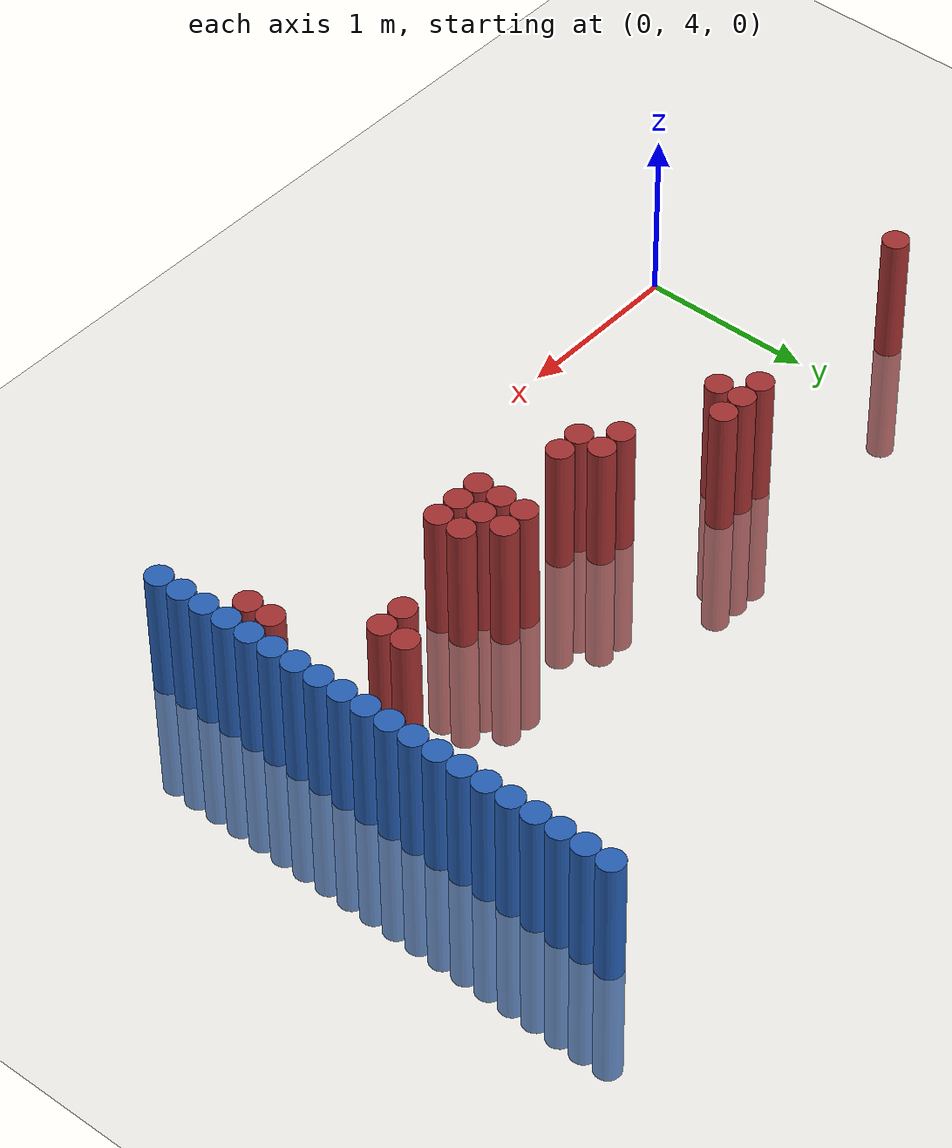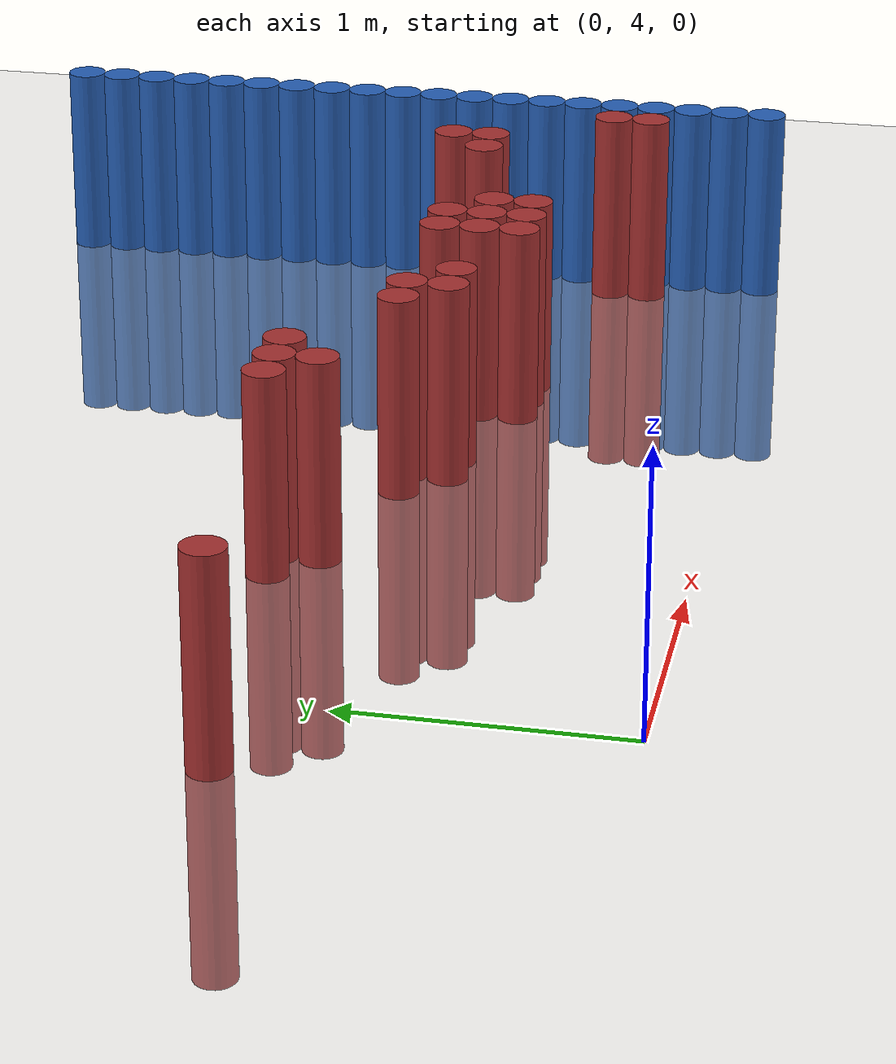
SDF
<sdf version="1.6">
 <world name="default">
  <model name="ground_plane">
   <static>1</static>
   <link name="link">
    <collision name="collision">
     <geometry><plane><normal>0 0 1</normal><size>100 100</size></plane></geometry>
     <surface><friction><ode><mu>100</mu><mu2>50</mu2></ode></friction></surface>
    </collision>
    <visual name="visual">
     <cast_shadows>0</cast_shadows>
     <geometry><plane><normal>0 0 1</normal><size>100 100</size></plane></geometry>
     <material>
      <script><uri>file://media/materials/scripts/gazebo.material</uri><name>Gazebo/Grey</name></script>
     </material>
    </visual>
   </link>
  </model>
  <model name="unit_cylinder_168">
   <static>1</static>
   <pose>3.925000 4.075000 0.000000 0.000000 0.000000 0.000000</pose>
   <link name="link">
    <inertial>
     <mass>1</mass>
     <inertia><ixx>0.145833</ixx><ixy>0</ixy><ixz>0</ixz><iyy>0.145833</iyy><iyz>0</iyz><izz>0.125</izz></inertia>
    </inertial>
    <collision name="collision">
     <geometry><cylinder><radius>0.075000</radius><length>1.5</length></cylinder></geometry>
    </collision>
    <visual name="visual">
     <geometry><cylinder><radius>0.075000</radius><length>1.5</length></cylinder></geometry>
     <material>
      <ambient>0.152000 0.379000 0.720000 1</ambient>
      <diffuse>0.152000 0.379000 0.720000 1</diffuse>
     </material>
     <material>
      <script><name>Gazebo/Grey</name><uri>file://media/materials/scripts/gazebo.material</uri></script>
     </material>
    </visual>
   </link>
  </model>
  <model name="unit_cylinder_170">
   <static>1</static>
   <pose>3.925000 4.225000 0.000000 0.000000 0.000000 0.000000</pose>
   <link name="link">
    <inertial>
     <mass>1</mass>
     <inertia><ixx>0.145833</ixx><ixy>0</ixy><ixz>0</ixz><iyy>0.145833</iyy><iyz>0</iyz><izz>0.125</izz></inertia>
    </inertial>
    <collision name="collision">
     <geometry><cylinder><radius>0.075000</radius><length>1.5</length></cylinder></geometry>
    </collision>
    <visual name="visual">
     <geometry><cylinder><radius>0.075000</radius><length>1.5</length></cylinder></geometry>
     <material>
      <ambient>0.152000 0.379000 0.720000 1</ambient>
      <diffuse>0.152000 0.379000 0.720000 1</diffuse>
     </material>
     <material>
      <script><name>Gazebo/Grey</name><uri>file://media/materials/scripts/gazebo.material</uri></script>
     </material>
    </visual>
   </link>
  </model>
  <model name="unit_cylinder_172">
   <static>1</static>
   <pose>3.925000 4.375000 0.000000 0.000000 0.000000 0.000000</pose>
   <link name="link">
    <inertial>
     <mass>1</mass>
     <inertia><ixx>0.145833</ixx><ixy>0</ixy><ixz>0</ixz><iyy>0.145833</iyy><iyz>0</iyz><izz>0.125</izz></inertia>
    </inertial>
    <collision name="collision">
     <geometry><cylinder><radius>0.075000</radius><length>1.5</length></cylinder></geometry>
    </collision>
    <visual name="visual">
     <geometry><cylinder><radius>0.075000</radius><length>1.5</length></cylinder></geometry>
     <material>
      <ambient>0.152000 0.379000 0.720000 1</ambient>
      <diffuse>0.152000 0.379000 0.720000 1</diffuse>
     </material>
     <material>
      <script><name>Gazebo/Grey</name><uri>file://media/materials/scripts/gazebo.material</uri></script>
     </material>
    </visual>
   </link>
  </model>
  <model name="unit_cylinder_174">
   <static>1</static>
   <pose>3.925000 4.525000 0.000000 0.000000 0.000000 0.000000</pose>
   <link name="link">
    <inertial>
     <mass>1</mass>
     <inertia><ixx>0.145833</ixx><ixy>0</ixy><ixz>0</ixz><iyy>0.145833</iyy><iyz>0</iyz><izz>0.125</izz></inertia>
    </inertial>
    <collision name="collision">
     <geometry><cylinder><radius>0.075000</radius><length>1.5</length></cylinder></geometry>
    </collision>
    <visual name="visual">
     <geometry><cylinder><radius>0.075000</radius><length>1.5</length></cylinder></geometry>
     <material>
      <ambient>0.152000 0.379000 0.720000 1</ambient>
      <diffuse>0.152000 0.379000 0.720000 1</diffuse>
     </material>
     <material>
      <script><name>Gazebo/Grey</name><uri>file://media/materials/scripts/gazebo.material</uri></script>
     </material>
    </visual>
   </link>
  </model>
  <model name="unit_cylinder_176">
   <static>1</static>
   <pose>3.925000 4.675000 0.000000 0.000000 0.000000 0.000000</pose>
   <link name="link">
    <inertial>
     <mass>1</mass>
     <inertia><ixx>0.145833</ixx><ixy>0</ixy><ixz>0</ixz><iyy>0.145833</iyy><iyz>0</iyz><izz>0.125</izz></inertia>
    </inertial>
    <collision name="collision">
     <geometry><cylinder><radius>0.075000</radius><length>1.5</length></cylinder></geometry>
    </collision>
    <visual name="visual">
     <geometry><cylinder><radius>0.075000</radius><length>1.5</length></cylinder></geometry>
     <material>
      <ambient>0.152000 0.379000 0.720000 1</ambient>
      <diffuse>0.152000 0.379000 0.720000 1</diffuse>
     </material>
     <material>
      <script><name>Gazebo/Grey</name><uri>file://media/materials/scripts/gazebo.material</uri></script>
     </material>
    </visual>
   </link>
  </model>
  <model name="unit_cylinder_178">
   <static>1</static>
   <pose>3.925000 4.825000 0.000000 0.000000 0.000000 0.000000</pose>
   <link name="link">
    <inertial>
     <mass>1</mass>
     <inertia><ixx>0.145833</ixx><ixy>0</ixy><ixz>0</ixz><iyy>0.145833</iyy><iyz>0</iyz><izz>0.125</izz></inertia>
    </inertial>
    <collision name="collision">
     <geometry><cylinder><radius>0.075000</radius><length>1.5</length></cylinder></geometry>
    </collision>
    <visual name="visual">
     <geometry><cylinder><radius>0.075000</radius><length>1.5</length></cylinder></geometry>
     <material>
      <ambient>0.152000 0.379000 0.720000 1</ambient>
      <diffuse>0.152000 0.379000 0.720000 1</diffuse>
     </material>
     <material>
      <script><name>Gazebo/Grey</name><uri>file://media/materials/scripts/gazebo.material</uri></script>
     </material>
    </visual>
   </link>
  </model>
  <model name="unit_cylinder_180">
   <static>1</static>
   <pose>3.925000 4.975000 0.000000 0.000000 0.000000 0.000000</pose>
   <link name="link">
    <inertial>
     <mass>1</mass>
     <inertia><ixx>0.145833</ixx><ixy>0</ixy><ixz>0</ixz><iyy>0.145833</iyy><iyz>0</iyz><izz>0.125</izz></inertia>
    </inertial>
    <collision name="collision">
     <geometry><cylinder><radius>0.075000</radius><length>1.5</length></cylinder></geometry>
    </collision>
    <visual name="visual">
     <geometry><cylinder><radius>0.075000</radius><length>1.5</length></cylinder></geometry>
     <material>
      <ambient>0.152000 0.379000 0.720000 1</ambient>
      <diffuse>0.152000 0.379000 0.720000 1</diffuse>
     </material>
     <material>
      <script><name>Gazebo/Grey</name><uri>file://media/materials/scripts/gazebo.material</uri></script>
     </material>
    </visual>
   </link>
  </model>
  <model name="unit_cylinder_182">
   <static>1</static>
   <pose>3.925000 5.125000 0.000000 0.000000 0.000000 0.000000</pose>
   <link name="link">
    <inertial>
     <mass>1</mass>
     <inertia><ixx>0.145833</ixx><ixy>0</ixy><ixz>0</ixz><iyy>0.145833</iyy><iyz>0</iyz><izz>0.125</izz></inertia>
    </inertial>
    <collision name="collision">
     <geometry><cylinder><radius>0.075000</radius><length>1.5</length></cylinder></geometry>
    </collision>
    <visual name="visual">
     <geometry><cylinder><radius>0.075000</radius><length>1.5</length></cylinder></geometry>
     <material>
      <ambient>0.152000 0.379000 0.720000 1</ambient>
      <diffuse>0.152000 0.379000 0.720000 1</diffuse>
     </material>
     <material>
      <script><name>Gazebo/Grey</name><uri>file://media/materials/scripts/gazebo.material</uri></script>
     </material>
    </visual>
   </link>
  </model>
  <model name="unit_cylinder_184">
   <static>1</static>
   <pose>3.925000 5.275000 0.000000 0.000000 0.000000 0.000000</pose>
   <link name="link">
    <inertial>
     <mass>1</mass>
     <inertia><ixx>0.145833</ixx><ixy>0</ixy><ixz>0</ixz><iyy>0.145833</iyy><iyz>0</iyz><izz>0.125</izz></inertia>
    </inertial>
    <collision name="collision">
     <geometry><cylinder><radius>0.075000</radius><length>1.5</length></cylinder></geometry>
    </collision>
    <visual name="visual">
     <geometry><cylinder><radius>0.075000</radius><length>1.5</length></cylinder></geometry>
     <material>
      <ambient>0.152000 0.379000 0.720000 1</ambient>
      <diffuse>0.152000 0.379000 0.720000 1</diffuse>
     </material>
     <material>
      <script><name>Gazebo/Grey</name><uri>file://media/materials/scripts/gazebo.material</uri></script>
     </material>
    </visual>
   </link>
  </model>
  <model name="unit_cylinder_186">
   <static>1</static>
   <pose>3.925000 5.425000 0.000000 0.000000 0.000000 0.000000</pose>
   <link name="link">
    <inertial>
     <mass>1</mass>
     <inertia><ixx>0.145833</ixx><ixy>0</ixy><ixz>0</ixz><iyy>0.145833</iyy><iyz>0</iyz><izz>0.125</izz></inertia>
    </inertial>
    <collision name="collision">
     <geometry><cylinder><radius>0.075000</radius><length>1.5</length></cylinder></geometry>
    </collision>
    <visual name="visual">
     <geometry><cylinder><radius>0.075000</radius><length>1.5</length></cylinder></geometry>
     <material>
      <ambient>0.152000 0.379000 0.720000 1</ambient>
      <diffuse>0.152000 0.379000 0.720000 1</diffuse>
     </material>
     <material>
      <script><name>Gazebo/Grey</name><uri>file://media/materials/scripts/gazebo.material</uri></script>
     </material>
    </visual>
   </link>
  </model>
  <model name="unit_cylinder_188">
   <static>1</static>
   <pose>3.925000 5.575000 0.000000 0.000000 0.000000 0.000000</pose>
   <link name="link">
    <inertial>
     <mass>1</mass>
     <inertia><ixx>0.145833</ixx><ixy>0</ixy><ixz>0</ixz><iyy>0.145833</iyy><iyz>0</iyz><izz>0.125</izz></inertia>
    </inertial>
    <collision name="collision">
     <geometry><cylinder><radius>0.075000</radius><length>1.5</length></cylinder></geometry>
    </collision>
    <visual name="visual">
     <geometry><cylinder><radius>0.075000</radius><length>1.5</length></cylinder></geometry>
     <material>
      <ambient>0.152000 0.379000 0.720000 1</ambient>
      <diffuse>0.152000 0.379000 0.720000 1</diffuse>
     </material>
     <material>
      <script><name>Gazebo/Grey</name><uri>file://media/materials/scripts/gazebo.material</uri></script>
     </material>
    </visual>
   </link>
  </model>
  <model name="unit_cylinder_190">
   <static>1</static>
   <pose>3.925000 5.725000 0.000000 0.000000 0.000000 0.000000</pose>
   <link name="link">
    <inertial>
     <mass>1</mass>
     <inertia><ixx>0.145833</ixx><ixy>0</ixy><ixz>0</ixz><iyy>0.145833</iyy><iyz>0</iyz><izz>0.125</izz></inertia>
    </inertial>
    <collision name="collision">
     <geometry><cylinder><radius>0.075000</radius><length>1.5</length></cylinder></geometry>
    </collision>
    <visual name="visual">
     <geometry><cylinder><radius>0.075000</radius><length>1.5</length></cylinder></geometry>
     <material>
      <ambient>0.152000 0.379000 0.720000 1</ambient>
      <diffuse>0.152000 0.379000 0.720000 1</diffuse>
     </material>
     <material>
      <script><name>Gazebo/Grey</name><uri>file://media/materials/scripts/gazebo.material</uri></script>
     </material>
    </visual>
   </link>
  </model>
  <model name="unit_cylinder_192">
   <static>1</static>
   <pose>3.925000 5.875000 0.000000 0.000000 0.000000 0.000000</pose>
   <link name="link">
    <inertial>
     <mass>1</mass>
     <inertia><ixx>0.145833</ixx><ixy>0</ixy><ixz>0</ixz><iyy>0.145833</iyy><iyz>0</iyz><izz>0.125</izz></inertia>
    </inertial>
    <collision name="collision">
     <geometry><cylinder><radius>0.075000</radius><length>1.5</length></cylinder></geometry>
    </collision>
    <visual name="visual">
     <geometry><cylinder><radius>0.075000</radius><length>1.5</length></cylinder></geometry>
     <material>
      <ambient>0.152000 0.379000 0.720000 1</ambient>
      <diffuse>0.152000 0.379000 0.720000 1</diffuse>
     </material>
     <material>
      <script><name>Gazebo/Grey</name><uri>file://media/materials/scripts/gazebo.material</uri></script>
     </material>
    </visual>
   </link>
  </model>
  <model name="unit_cylinder_194">
   <static>1</static>
   <pose>3.925000 6.025000 0.000000 0.000000 0.000000 0.000000</pose>
   <link name="link">
    <inertial>
     <mass>1</mass>
     <inertia><ixx>0.145833</ixx><ixy>0</ixy><ixz>0</ixz><iyy>0.145833</iyy><iyz>0</iyz><izz>0.125</izz></inertia>
    </inertial>
    <collision name="collision">
     <geometry><cylinder><radius>0.075000</radius><length>1.5</length></cylinder></geometry>
    </collision>
    <visual name="visual">
     <geometry><cylinder><radius>0.075000</radius><length>1.5</length></cylinder></geometry>
     <material>
      <ambient>0.152000 0.379000 0.720000 1</ambient>
      <diffuse>0.152000 0.379000 0.720000 1</diffuse>
     </material>
     <material>
      <script><name>Gazebo/Grey</name><uri>file://media/materials/scripts/gazebo.material</uri></script>
     </material>
    </visual>
   </link>
  </model>
  <model name="unit_cylinder_196">
   <static>1</static>
   <pose>3.925000 6.175000 0.000000 0.000000 0.000000 0.000000</pose>
   <link name="link">
    <inertial>
     <mass>1</mass>
     <inertia><ixx>0.145833</ixx><ixy>0</ixy><ixz>0</ixz><iyy>0.145833</iyy><iyz>0</iyz><izz>0.125</izz></inertia>
    </inertial>
    <collision name="collision">
     <geometry><cylinder><radius>0.075000</radius><length>1.5</length></cylinder></geometry>
    </collision>
    <visual name="visual">
     <geometry><cylinder><radius>0.075000</radius><length>1.5</length></cylinder></geometry>
     <material>
      <ambient>0.152000 0.379000 0.720000 1</ambient>
      <diffuse>0.152000 0.379000 0.720000 1</diffuse>
     </material>
     <material>
      <script><name>Gazebo/Grey</name><uri>file://media/materials/scripts/gazebo.material</uri></script>
     </material>
    </visual>
   </link>
  </model>
  <model name="unit_cylinder_198">
   <static>1</static>
   <pose>3.925000 6.325000 0.000000 0.000000 0.000000 0.000000</pose>
   <link name="link">
    <inertial>
     <mass>1</mass>
     <inertia><ixx>0.145833</ixx><ixy>0</ixy><ixz>0</ixz><iyy>0.145833</iyy><iyz>0</iyz><izz>0.125</izz></inertia>
    </inertial>
    <collision name="collision">
     <geometry><cylinder><radius>0.075000</radius><length>1.5</length></cylinder></geometry>
    </collision>
    <visual name="visual">
     <geometry><cylinder><radius>0.075000</radius><length>1.5</length></cylinder></geometry>
     <material>
      <ambient>0.152000 0.379000 0.720000 1</ambient>
      <diffuse>0.152000 0.379000 0.720000 1</diffuse>
     </material>
     <material>
      <script><name>Gazebo/Grey</name><uri>file://media/materials/scripts/gazebo.material</uri></script>
     </material>
    </visual>
   </link>
  </model>
  <model name="unit_cylinder_200">
   <static>1</static>
   <pose>3.925000 6.475000 0.000000 0.000000 0.000000 0.000000</pose>
   <link name="link">
    <inertial>
     <mass>1</mass>
     <inertia><ixx>0.145833</ixx><ixy>0</ixy><ixz>0</ixz><iyy>0.145833</iyy><iyz>0</iyz><izz>0.125</izz></inertia>
    </inertial>
    <collision name="collision">
     <geometry><cylinder><radius>0.075000</radius><length>1.5</length></cylinder></geometry>
    </collision>
    <visual name="visual">
     <geometry><cylinder><radius>0.075000</radius><length>1.5</length></cylinder></geometry>
     <material>
      <ambient>0.152000 0.379000 0.720000 1</ambient>
      <diffuse>0.152000 0.379000 0.720000 1</diffuse>
     </material>
     <material>
      <script><name>Gazebo/Grey</name><uri>file://media/materials/scripts/gazebo.material</uri></script>
     </material>
    </visual>
   </link>
  </model>
  <model name="unit_cylinder_202">
   <static>1</static>
   <pose>3.925000 6.625000 0.000000 0.000000 0.000000 0.000000</pose>
   <link name="link">
    <inertial>
     <mass>1</mass>
     <inertia><ixx>0.145833</ixx><ixy>0</ixy><ixz>0</ixz><iyy>0.145833</iyy><iyz>0</iyz><izz>0.125</izz></inertia>
    </inertial>
    <collision name="collision">
     <geometry><cylinder><radius>0.075000</radius><length>1.5</length></cylinder></geometry>
    </collision>
    <visual name="visual">
     <geometry><cylinder><radius>0.075000</radius><length>1.5</length></cylinder></geometry>
     <material>
      <ambient>0.152000 0.379000 0.720000 1</ambient>
      <diffuse>0.152000 0.379000 0.720000 1</diffuse>
     </material>
     <material>
      <script><name>Gazebo/Grey</name><uri>file://media/materials/scripts/gazebo.material</uri></script>
     </material>
    </visual>
   </link>
  </model>
  <model name="unit_cylinder_204">
   <static>1</static>
   <pose>3.925000 6.775000 0.000000 0.000000 0.000000 0.000000</pose>
   <link name="link">
    <inertial>
     <mass>1</mass>
     <inertia><ixx>0.145833</ixx><ixy>0</ixy><ixz>0</ixz><iyy>0.145833</iyy><iyz>0</iyz><izz>0.125</izz></inertia>
    </inertial>
    <collision name="collision">
     <geometry><cylinder><radius>0.075000</radius><length>1.5</length></cylinder></geometry>
    </collision>
    <visual name="visual">
     <geometry><cylinder><radius>0.075000</radius><length>1.5</length></cylinder></geometry>
     <material>
      <ambient>0.152000 0.379000 0.720000 1</ambient>
      <diffuse>0.152000 0.379000 0.720000 1</diffuse>
     </material>
     <material>
      <script><name>Gazebo/Grey</name><uri>file://media/materials/scripts/gazebo.material</uri></script>
     </material>
    </visual>
   </link>
  </model>
  <model name="unit_cylinder_206">
   <static>1</static>
   <pose>3.925000 6.925000 0.000000 0.000000 0.000000 0.000000</pose>
   <link name="link">
    <inertial>
     <mass>1</mass>
     <inertia><ixx>0.145833</ixx><ixy>0</ixy><ixz>0</ixz><iyy>0.145833</iyy><iyz>0</iyz><izz>0.125</izz></inertia>
    </inertial>
    <collision name="collision">
     <geometry><cylinder><radius>0.075000</radius><length>1.5</length></cylinder></geometry>
    </collision>
    <visual name="visual">
     <geometry><cylinder><radius>0.075000</radius><length>1.5</length></cylinder></geometry>
     <material>
      <ambient>0.152000 0.379000 0.720000 1</ambient>
      <diffuse>0.152000 0.379000 0.720000 1</diffuse>
     </material>
     <material>
      <script><name>Gazebo/Grey</name><uri>file://media/materials/scripts/gazebo.material</uri></script>
     </material>
    </visual>
   </link>
  </model>
  <model name="unit_cylinder_402">
   <static>1</static>
   <pose>-0.425000 5.275000 0.000000 0.000000 0.000000 0.000000</pose>
   <link name="link">
    <inertial>
     <mass>1</mass>
     <inertia><ixx>0.145833</ixx><ixy>0</ixy><ixz>0</ixz><iyy>0.145833</iyy><iyz>0</iyz><izz>0.125</izz></inertia>
    </inertial>
    <collision name="collision">
     <geometry><cylinder><radius>0.075000</radius><length>1.5</length></cylinder></geometry>
    </collision>
    <visual name="visual">
     <geometry><cylinder><radius>0.075000</radius><length>1.5</length></cylinder></geometry>
     <material>
      <ambient>0.648000 0.192000 0.192000 1</ambient>
      <diffuse>0.648000 0.192000 0.192000 1</diffuse>
     </material>
     <material>
      <script><name>Gazebo/Grey</name><uri>file://media/materials/scripts/gazebo.material</uri></script>
     </material>
    </visual>
   </link>
  </model>
  <model name="unit_cylinder_418">
   <static>1</static>
   <pose>0.925000 5.425000 0.000000 0.000000 0.000000 0.000000</pose>
   <link name="link">
    <inertial>
     <mass>1</mass>
     <inertia><ixx>0.145833</ixx><ixy>0</ixy><ixz>0</ixz><iyy>0.145833</iyy><iyz>0</iyz><izz>0.125</izz></inertia>
    </inertial>
    <collision name="collision">
     <geometry><cylinder><radius>0.075000</radius><length>1.5</length></cylinder></geometry>
    </collision>
    <visual name="visual">
     <geometry><cylinder><radius>0.075000</radius><length>1.5</length></cylinder></geometry>
     <material>
      <ambient>0.648000 0.192000 0.192000 1</ambient>
      <diffuse>0.648000 0.192000 0.192000 1</diffuse>
     </material>
     <material>
      <script><name>Gazebo/Grey</name><uri>file://media/materials/scripts/gazebo.material</uri></script>
     </material>
    </visual>
   </link>
  </model>
  <model name="unit_cylinder_424">
   <static>1</static>
   <pose>1.075000 5.275000 0.000000 0.000000 0.000000 0.000000</pose>
   <link name="link">
    <inertial>
     <mass>1</mass>
     <inertia><ixx>0.145833</ixx><ixy>0</ixy><ixz>0</ixz><iyy>0.145833</iyy><iyz>0</iyz><izz>0.125</izz></inertia>
    </inertial>
    <collision name="collision">
     <geometry><cylinder><radius>0.075000</radius><length>1.5</length></cylinder></geometry>
    </collision>
    <visual name="visual">
     <geometry><cylinder><radius>0.075000</radius><length>1.5</length></cylinder></geometry>
     <material>
      <ambient>0.648000 0.192000 0.192000 1</ambient>
      <diffuse>0.648000 0.192000 0.192000 1</diffuse>
     </material>
     <material>
      <script><name>Gazebo/Grey</name><uri>file://media/materials/scripts/gazebo.material</uri></script>
     </material>
    </visual>
   </link>
  </model>
  <model name="unit_cylinder_425">
   <static>1</static>
   <pose>1.075000 5.425000 0.000000 0.000000 0.000000 0.000000</pose>
   <link name="link">
    <inertial>
     <mass>1</mass>
     <inertia><ixx>0.145833</ixx><ixy>0</ixy><ixz>0</ixz><iyy>0.145833</iyy><iyz>0</iyz><izz>0.125</izz></inertia>
    </inertial>
    <collision name="collision">
     <geometry><cylinder><radius>0.075000</radius><length>1.5</length></cylinder></geometry>
    </collision>
    <visual name="visual">
     <geometry><cylinder><radius>0.075000</radius><length>1.5</length></cylinder></geometry>
     <material>
      <ambient>0.648000 0.192000 0.192000 1</ambient>
      <diffuse>0.648000 0.192000 0.192000 1</diffuse>
     </material>
     <material>
      <script><name>Gazebo/Grey</name><uri>file://media/materials/scripts/gazebo.material</uri></script>
     </material>
    </visual>
   </link>
  </model>
  <model name="unit_cylinder_431">
   <static>1</static>
   <pose>1.225000 5.425000 0.000000 0.000000 0.000000 0.000000</pose>
   <link name="link">
    <inertial>
     <mass>1</mass>
     <inertia><ixx>0.145833</ixx><ixy>0</ixy><ixz>0</ixz><iyy>0.145833</iyy><iyz>0</iyz><izz>0.125</izz></inertia>
    </inertial>
    <collision name="collision">
     <geometry><cylinder><radius>0.075000</radius><length>1.5</length></cylinder></geometry>
    </collision>
    <visual name="visual">
     <geometry><cylinder><radius>0.075000</radius><length>1.5</length></cylinder></geometry>
     <material>
      <ambient>0.648000 0.192000 0.192000 1</ambient>
      <diffuse>0.648000 0.192000 0.192000 1</diffuse>
     </material>
     <material>
      <script><name>Gazebo/Grey</name><uri>file://media/materials/scripts/gazebo.material</uri></script>
     </material>
    </visual>
   </link>
  </model>
  <model name="unit_cylinder_438">
   <static>1</static>
   <pose>1.675000 5.125000 0.000000 0.000000 0.000000 0.000000</pose>
   <link name="link">
    <inertial>
     <mass>1</mass>
     <inertia><ixx>0.145833</ixx><ixy>0</ixy><ixz>0</ixz><iyy>0.145833</iyy><iyz>0</iyz><izz>0.125</izz></inertia>
    </inertial>
    <collision name="collision">
     <geometry><cylinder><radius>0.075000</radius><length>1.5</length></cylinder></geometry>
    </collision>
    <visual name="visual">
     <geometry><cylinder><radius>0.075000</radius><length>1.5</length></cylinder></geometry>
     <material>
      <ambient>0.648000 0.192000 0.192000 1</ambient>
      <diffuse>0.648000 0.192000 0.192000 1</diffuse>
     </material>
     <material>
      <script><name>Gazebo/Grey</name><uri>file://media/materials/scripts/gazebo.material</uri></script>
     </material>
    </visual>
   </link>
  </model>
  <model name="unit_cylinder_443">
   <static>1</static>
   <pose>1.825000 4.975000 0.000000 0.000000 0.000000 0.000000</pose>
   <link name="link">
    <inertial>
     <mass>1</mass>
     <inertia><ixx>0.145833</ixx><ixy>0</ixy><ixz>0</ixz><iyy>0.145833</iyy><iyz>0</iyz><izz>0.125</izz></inertia>
    </inertial>
    <collision name="collision">
     <geometry><cylinder><radius>0.075000</radius><length>1.5</length></cylinder></geometry>
    </collision>
    <visual name="visual">
     <geometry><cylinder><radius>0.075000</radius><length>1.5</length></cylinder></geometry>
     <material>
      <ambient>0.648000 0.192000 0.192000 1</ambient>
      <diffuse>0.648000 0.192000 0.192000 1</diffuse>
     </material>
     <material>
      <script><name>Gazebo/Grey</name><uri>file://media/materials/scripts/gazebo.material</uri></script>
     </material>
    </visual>
   </link>
  </model>
  <model name="unit_cylinder_444">
   <static>1</static>
   <pose>1.825000 5.125000 0.000000 0.000000 0.000000 0.000000</pose>
   <link name="link">
    <inertial>
     <mass>1</mass>
     <inertia><ixx>0.145833</ixx><ixy>0</ixy><ixz>0</ixz><iyy>0.145833</iyy><iyz>0</iyz><izz>0.125</izz></inertia>
    </inertial>
    <collision name="collision">
     <geometry><cylinder><radius>0.075000</radius><length>1.5</length></cylinder></geometry>
    </collision>
    <visual name="visual">
     <geometry><cylinder><radius>0.075000</radius><length>1.5</length></cylinder></geometry>
     <material>
      <ambient>0.648000 0.192000 0.192000 1</ambient>
      <diffuse>0.648000 0.192000 0.192000 1</diffuse>
     </material>
     <material>
      <script><name>Gazebo/Grey</name><uri>file://media/materials/scripts/gazebo.material</uri></script>
     </material>
    </visual>
   </link>
  </model>
  <model name="unit_cylinder_448">
   <static>1</static>
   <pose>1.975000 4.975000 0.000000 0.000000 0.000000 0.000000</pose>
   <link name="link">
    <inertial>
     <mass>1</mass>
     <inertia><ixx>0.145833</ixx><ixy>0</ixy><ixz>0</ixz><iyy>0.145833</iyy><iyz>0</iyz><izz>0.125</izz></inertia>
    </inertial>
    <collision name="collision">
     <geometry><cylinder><radius>0.075000</radius><length>1.5</length></cylinder></geometry>
    </collision>
    <visual name="visual">
     <geometry><cylinder><radius>0.075000</radius><length>1.5</length></cylinder></geometry>
     <material>
      <ambient>0.648000 0.192000 0.192000 1</ambient>
      <diffuse>0.648000 0.192000 0.192000 1</diffuse>
     </material>
     <material>
      <script><name>Gazebo/Grey</name><uri>file://media/materials/scripts/gazebo.material</uri></script>
     </material>
    </visual>
   </link>
  </model>
  <model name="unit_cylinder_451">
   <static>1</static>
   <pose>2.425000 4.825000 0.000000 0.000000 0.000000 0.000000</pose>
   <link name="link">
    <inertial>
     <mass>1</mass>
     <inertia><ixx>0.145833</ixx><ixy>0</ixy><ixz>0</ixz><iyy>0.145833</iyy><iyz>0</iyz><izz>0.125</izz></inertia>
    </inertial>
    <collision name="collision">
     <geometry><cylinder><radius>0.075000</radius><length>1.5</length></cylinder></geometry>
    </collision>
    <visual name="visual">
     <geometry><cylinder><radius>0.075000</radius><length>1.5</length></cylinder></geometry>
     <material>
      <ambient>0.648000 0.192000 0.192000 1</ambient>
      <diffuse>0.648000 0.192000 0.192000 1</diffuse>
     </material>
     <material>
      <script><name>Gazebo/Grey</name><uri>file://media/materials/scripts/gazebo.material</uri></script>
     </material>
    </visual>
   </link>
  </model>
  <model name="unit_cylinder_452">
   <static>1</static>
   <pose>2.425000 4.975000 0.000000 0.000000 0.000000 0.000000</pose>
   <link name="link">
    <inertial>
     <mass>1</mass>
     <inertia><ixx>0.145833</ixx><ixy>0</ixy><ixz>0</ixz><iyy>0.145833</iyy><iyz>0</iyz><izz>0.125</izz></inertia>
    </inertial>
    <collision name="collision">
     <geometry><cylinder><radius>0.075000</radius><length>1.5</length></cylinder></geometry>
    </collision>
    <visual name="visual">
     <geometry><cylinder><radius>0.075000</radius><length>1.5</length></cylinder></geometry>
     <material>
      <ambient>0.648000 0.192000 0.192000 1</ambient>
      <diffuse>0.648000 0.192000 0.192000 1</diffuse>
     </material>
     <material>
      <script><name>Gazebo/Grey</name><uri>file://media/materials/scripts/gazebo.material</uri></script>
     </material>
    </visual>
   </link>
  </model>
  <model name="unit_cylinder_453">
   <static>1</static>
   <pose>2.425000 5.125000 0.000000 0.000000 0.000000 0.000000</pose>
   <link name="link">
    <inertial>
     <mass>1</mass>
     <inertia><ixx>0.145833</ixx><ixy>0</ixy><ixz>0</ixz><iyy>0.145833</iyy><iyz>0</iyz><izz>0.125</izz></inertia>
    </inertial>
    <collision name="collision">
     <geometry><cylinder><radius>0.075000</radius><length>1.5</length></cylinder></geometry>
    </collision>
    <visual name="visual">
     <geometry><cylinder><radius>0.075000</radius><length>1.5</length></cylinder></geometry>
     <material>
      <ambient>0.648000 0.192000 0.192000 1</ambient>
      <diffuse>0.648000 0.192000 0.192000 1</diffuse>
     </material>
     <material>
      <script><name>Gazebo/Grey</name><uri>file://media/materials/scripts/gazebo.material</uri></script>
     </material>
    </visual>
   </link>
  </model>
  <model name="unit_cylinder_456">
   <static>1</static>
   <pose>2.575000 4.825000 0.000000 0.000000 0.000000 0.000000</pose>
   <link name="link">
    <inertial>
     <mass>1</mass>
     <inertia><ixx>0.145833</ixx><ixy>0</ixy><ixz>0</ixz><iyy>0.145833</iyy><iyz>0</iyz><izz>0.125</izz></inertia>
    </inertial>
    <collision name="collision">
     <geometry><cylinder><radius>0.075000</radius><length>1.5</length></cylinder></geometry>
    </collision>
    <visual name="visual">
     <geometry><cylinder><radius>0.075000</radius><length>1.5</length></cylinder></geometry>
     <material>
      <ambient>0.648000 0.192000 0.192000 1</ambient>
      <diffuse>0.648000 0.192000 0.192000 1</diffuse>
     </material>
     <material>
      <script><name>Gazebo/Grey</name><uri>file://media/materials/scripts/gazebo.material</uri></script>
     </material>
    </visual>
   </link>
  </model>
  <model name="unit_cylinder_457">
   <static>1</static>
   <pose>2.575000 4.975000 0.000000 0.000000 0.000000 0.000000</pose>
   <link name="link">
    <inertial>
     <mass>1</mass>
     <inertia><ixx>0.145833</ixx><ixy>0</ixy><ixz>0</ixz><iyy>0.145833</iyy><iyz>0</iyz><izz>0.125</izz></inertia>
    </inertial>
    <collision name="collision">
     <geometry><cylinder><radius>0.075000</radius><length>1.5</length></cylinder></geometry>
    </collision>
    <visual name="visual">
     <geometry><cylinder><radius>0.075000</radius><length>1.5</length></cylinder></geometry>
     <material>
      <ambient>0.648000 0.192000 0.192000 1</ambient>
      <diffuse>0.648000 0.192000 0.192000 1</diffuse>
     </material>
     <material>
      <script><name>Gazebo/Grey</name><uri>file://media/materials/scripts/gazebo.material</uri></script>
     </material>
    </visual>
   </link>
  </model>
  <model name="unit_cylinder_458">
   <static>1</static>
   <pose>2.575000 5.125000 0.000000 0.000000 0.000000 0.000000</pose>
   <link name="link">
    <inertial>
     <mass>1</mass>
     <inertia><ixx>0.145833</ixx><ixy>0</ixy><ixz>0</ixz><iyy>0.145833</iyy><iyz>0</iyz><izz>0.125</izz></inertia>
    </inertial>
    <collision name="collision">
     <geometry><cylinder><radius>0.075000</radius><length>1.5</length></cylinder></geometry>
    </collision>
    <visual name="visual">
     <geometry><cylinder><radius>0.075000</radius><length>1.5</length></cylinder></geometry>
     <material>
      <ambient>0.648000 0.192000 0.192000 1</ambient>
      <diffuse>0.648000 0.192000 0.192000 1</diffuse>
     </material>
     <material>
      <script><name>Gazebo/Grey</name><uri>file://media/materials/scripts/gazebo.material</uri></script>
     </material>
    </visual>
   </link>
  </model>
  <model name="unit_cylinder_460">
   <static>1</static>
   <pose>2.725000 4.825000 0.000000 0.000000 0.000000 0.000000</pose>
   <link name="link">
    <inertial>
     <mass>1</mass>
     <inertia><ixx>0.145833</ixx><ixy>0</ixy><ixz>0</ixz><iyy>0.145833</iyy><iyz>0</iyz><izz>0.125</izz></inertia>
    </inertial>
    <collision name="collision">
     <geometry><cylinder><radius>0.075000</radius><length>1.5</length></cylinder></geometry>
    </collision>
    <visual name="visual">
     <geometry><cylinder><radius>0.075000</radius><length>1.5</length></cylinder></geometry>
     <material>
      <ambient>0.648000 0.192000 0.192000 1</ambient>
      <diffuse>0.648000 0.192000 0.192000 1</diffuse>
     </material>
     <material>
      <script><name>Gazebo/Grey</name><uri>file://media/materials/scripts/gazebo.material</uri></script>
     </material>
    </visual>
   </link>
  </model>
  <model name="unit_cylinder_461">
   <static>1</static>
   <pose>2.725000 4.975000 0.000000 0.000000 0.000000 0.000000</pose>
   <link name="link">
    <inertial>
     <mass>1</mass>
     <inertia><ixx>0.145833</ixx><ixy>0</ixy><ixz>0</ixz><iyy>0.145833</iyy><iyz>0</iyz><izz>0.125</izz></inertia>
    </inertial>
    <collision name="collision">
     <geometry><cylinder><radius>0.075000</radius><length>1.5</length></cylinder></geometry>
    </collision>
    <visual name="visual">
     <geometry><cylinder><radius>0.075000</radius><length>1.5</length></cylinder></geometry>
     <material>
      <ambient>0.648000 0.192000 0.192000 1</ambient>
      <diffuse>0.648000 0.192000 0.192000 1</diffuse>
     </material>
     <material>
      <script><name>Gazebo/Grey</name><uri>file://media/materials/scripts/gazebo.material</uri></script>
     </material>
    </visual>
   </link>
  </model>
  <model name="unit_cylinder_475">
   <static>1</static>
   <pose>3.325000 5.125000 0.000000 0.000000 0.000000 0.000000</pose>
   <link name="link">
    <inertial>
     <mass>1</mass>
     <inertia><ixx>0.145833</ixx><ixy>0</ixy><ixz>0</ixz><iyy>0.145833</iyy><iyz>0</iyz><izz>0.125</izz></inertia>
    </inertial>
    <collision name="collision">
     <geometry><cylinder><radius>0.075000</radius><length>1.5</length></cylinder></geometry>
    </collision>
    <visual name="visual">
     <geometry><cylinder><radius>0.075000</radius><length>1.5</length></cylinder></geometry>
     <material>
      <ambient>0.648000 0.192000 0.192000 1</ambient>
      <diffuse>0.648000 0.192000 0.192000 1</diffuse>
     </material>
     <material>
      <script><name>Gazebo/Grey</name><uri>file://media/materials/scripts/gazebo.material</uri></script>
     </material>
    </visual>
   </link>
  </model>
  <model name="unit_cylinder_483">
   <static>1</static>
   <pose>3.475000 5.125000 0.000000 0.000000 0.000000 0.000000</pose>
   <link name="link">
    <inertial>
     <mass>1</mass>
     <inertia><ixx>0.145833</ixx><ixy>0</ixy><ixz>0</ixz><iyy>0.145833</iyy><iyz>0</iyz><izz>0.125</izz></inertia>
    </inertial>
    <collision name="collision">
     <geometry><cylinder><radius>0.075000</radius><length>1.5</length></cylinder></geometry>
    </collision>
    <visual name="visual">
     <geometry><cylinder><radius>0.075000</radius><length>1.5</length></cylinder></geometry>
     <material>
      <ambient>0.648000 0.192000 0.192000 1</ambient>
      <diffuse>0.648000 0.192000 0.192000 1</diffuse>
     </material>
     <material>
      <script><name>Gazebo/Grey</name><uri>file://media/materials/scripts/gazebo.material</uri></script>
     </material>
    </visual>
   </link>
  </model>
  <model name="unit_cylinder_484">
   <static>1</static>
   <pose>3.475000 5.275000 0.000000 0.000000 0.000000 0.000000</pose>
   <link name="link">
    <inertial>
     <mass>1</mass>
     <inertia><ixx>0.145833</ixx><ixy>0</ixy><ixz>0</ixz><iyy>0.145833</iyy><iyz>0</iyz><izz>0.125</izz></inertia>
    </inertial>
    <collision name="collision">
     <geometry><cylinder><radius>0.075000</radius><length>1.5</length></cylinder></geometry>
    </collision>
    <visual name="visual">
     <geometry><cylinder><radius>0.075000</radius><length>1.5</length></cylinder></geometry>
     <material>
      <ambient>0.648000 0.192000 0.192000 1</ambient>
      <diffuse>0.648000 0.192000 0.192000 1</diffuse>
     </material>
     <material>
      <script><name>Gazebo/Grey</name><uri>file://media/materials/scripts/gazebo.material</uri></script>
     </material>
    </visual>
   </link>
  </model>
  <model name="unit_cylinder_514">
   <static>1</static>
   <pose>3.775000 4.525000 0.000000 0.000000 0.000000 0.000000</pose>
   <link name="link">
    <inertial>
     <mass>1</mass>
     <inertia><ixx>0.145833</ixx><ixy>0</ixy><ixz>0</ixz><iyy>0.145833</iyy><iyz>0</iyz><izz>0.125</izz></inertia>
    </inertial>
    <collision name="collision">
     <geometry><cylinder><radius>0.075000</radius><length>1.5</length></cylinder></geometry>
    </collision>
    <visual name="visual">
     <geometry><cylinder><radius>0.075000</radius><length>1.5</length></cylinder></geometry>
     <material>
      <ambient>0.648000 0.192000 0.192000 1</ambient>
      <diffuse>0.648000 0.192000 0.192000 1</diffuse>
     </material>
     <material>
      <script><name>Gazebo/Grey</name><uri>file://media/materials/scripts/gazebo.material</uri></script>
     </material>
    </visual>
   </link>
  </model>
  <model name="unit_cylinder_515">
   <static>1</static>
   <pose>3.775000 4.675000 0.000000 0.000000 0.000000 0.000000</pose>
   <link name="link">
    <inertial>
     <mass>1</mass>
     <inertia><ixx>0.145833</ixx><ixy>0</ixy><ixz>0</ixz><iyy>0.145833</iyy><iyz>0</iyz><izz>0.125</izz></inertia>
    </inertial>
    <collision name="collision">
     <geometry><cylinder><radius>0.075000</radius><length>1.5</length></cylinder></geometry>
    </collision>
    <visual name="visual">
     <geometry><cylinder><radius>0.075000</radius><length>1.5</length></cylinder></geometry>
     <material>
      <ambient>0.648000 0.192000 0.192000 1</ambient>
      <diffuse>0.648000 0.192000 0.192000 1</diffuse>
     </material>
     <material>
      <script><name>Gazebo/Grey</name><uri>file://media/materials/scripts/gazebo.material</uri></script>
     </material>
    </visual>
   </link>
  </model>
  <model name="unit_cylinder_556">
   <static>1</static>
   <pose>3.925000 4.075000 0.000000 0.000000 0.000000 0.000000</pose>
   <link name="link">
    <inertial>
     <mass>1</mass>
     <inertia><ixx>0.145833</ixx><ixy>0</ixy><ixz>0</ixz><iyy>0.145833</iyy><iyz>0</iyz><izz>0.125</izz></inertia>
    </inertial>
    <collision name="collision">
     <geometry><cylinder><radius>0.075000</radius><length>1.5</length></cylinder></geometry>
    </collision>
    <visual name="visual">
     <geometry><cylinder><radius>0.075000</radius><length>1.5</length></cylinder></geometry>
     <material>
      <ambient>0.152000 0.379000 0.720000 1</ambient>
      <diffuse>0.152000 0.379000 0.720000 1</diffuse>
     </material>
     <material>
      <script><name>Gazebo/Grey</name><uri>file://media/materials/scripts/gazebo.material</uri></script>
     </material>
    </visual>
   </link>
  </model>
  <model name="unit_cylinder_557">
   <static>1</static>
   <pose>3.925000 4.225000 0.000000 0.000000 0.000000 0.000000</pose>
   <link name="link">
    <inertial>
     <mass>1</mass>
     <inertia><ixx>0.145833</ixx><ixy>0</ixy><ixz>0</ixz><iyy>0.145833</iyy><iyz>0</iyz><izz>0.125</izz></inertia>
    </inertial>
    <collision name="collision">
     <geometry><cylinder><radius>0.075000</radius><length>1.5</length></cylinder></geometry>
    </collision>
    <visual name="visual">
     <geometry><cylinder><radius>0.075000</radius><length>1.5</length></cylinder></geometry>
     <material>
      <ambient>0.152000 0.379000 0.720000 1</ambient>
      <diffuse>0.152000 0.379000 0.720000 1</diffuse>
     </material>
     <material>
      <script><name>Gazebo/Grey</name><uri>file://media/materials/scripts/gazebo.material</uri></script>
     </material>
    </visual>
   </link>
  </model>
  <model name="unit_cylinder_558">
   <static>1</static>
   <pose>3.925000 4.375000 0.000000 0.000000 0.000000 0.000000</pose>
   <link name="link">
    <inertial>
     <mass>1</mass>
     <inertia><ixx>0.145833</ixx><ixy>0</ixy><ixz>0</ixz><iyy>0.145833</iyy><iyz>0</iyz><izz>0.125</izz></inertia>
    </inertial>
    <collision name="collision">
     <geometry><cylinder><radius>0.075000</radius><length>1.5</length></cylinder></geometry>
    </collision>
    <visual name="visual">
     <geometry><cylinder><radius>0.075000</radius><length>1.5</length></cylinder></geometry>
     <material>
      <ambient>0.152000 0.379000 0.720000 1</ambient>
      <diffuse>0.152000 0.379000 0.720000 1</diffuse>
     </material>
     <material>
      <script><name>Gazebo/Grey</name><uri>file://media/materials/scripts/gazebo.material</uri></script>
     </material>
    </visual>
   </link>
  </model>
  <model name="unit_cylinder_559">
   <static>1</static>
   <pose>3.925000 4.525000 0.000000 0.000000 0.000000 0.000000</pose>
   <link name="link">
    <inertial>
     <mass>1</mass>
     <inertia><ixx>0.145833</ixx><ixy>0</ixy><ixz>0</ixz><iyy>0.145833</iyy><iyz>0</iyz><izz>0.125</izz></inertia>
    </inertial>
    <collision name="collision">
     <geometry><cylinder><radius>0.075000</radius><length>1.5</length></cylinder></geometry>
    </collision>
    <visual name="visual">
     <geometry><cylinder><radius>0.075000</radius><length>1.5</length></cylinder></geometry>
     <material>
      <ambient>0.152000 0.379000 0.720000 1</ambient>
      <diffuse>0.152000 0.379000 0.720000 1</diffuse>
     </material>
     <material>
      <script><name>Gazebo/Grey</name><uri>file://media/materials/scripts/gazebo.material</uri></script>
     </material>
    </visual>
   </link>
  </model>
  <model name="unit_cylinder_560">
   <static>1</static>
   <pose>3.925000 4.675000 0.000000 0.000000 0.000000 0.000000</pose>
   <link name="link">
    <inertial>
     <mass>1</mass>
     <inertia><ixx>0.145833</ixx><ixy>0</ixy><ixz>0</ixz><iyy>0.145833</iyy><iyz>0</iyz><izz>0.125</izz></inertia>
    </inertial>
    <collision name="collision">
     <geometry><cylinder><radius>0.075000</radius><length>1.5</length></cylinder></geometry>
    </collision>
    <visual name="visual">
     <geometry><cylinder><radius>0.075000</radius><length>1.5</length></cylinder></geometry>
     <material>
      <ambient>0.152000 0.379000 0.720000 1</ambient>
      <diffuse>0.152000 0.379000 0.720000 1</diffuse>
     </material>
     <material>
      <script><name>Gazebo/Grey</name><uri>file://media/materials/scripts/gazebo.material</uri></script>
     </material>
    </visual>
   </link>
  </model>
  <model name="unit_cylinder_561">
   <static>1</static>
   <pose>3.925000 4.825000 0.000000 0.000000 0.000000 0.000000</pose>
   <link name="link">
    <inertial>
     <mass>1</mass>
     <inertia><ixx>0.145833</ixx><ixy>0</ixy><ixz>0</ixz><iyy>0.145833</iyy><iyz>0</iyz><izz>0.125</izz></inertia>
    </inertial>
    <collision name="collision">
     <geometry><cylinder><radius>0.075000</radius><length>1.5</length></cylinder></geometry>
    </collision>
    <visual name="visual">
     <geometry><cylinder><radius>0.075000</radius><length>1.5</length></cylinder></geometry>
     <material>
      <ambient>0.152000 0.379000 0.720000 1</ambient>
      <diffuse>0.152000 0.379000 0.720000 1</diffuse>
     </material>
     <material>
      <script><name>Gazebo/Grey</name><uri>file://media/materials/scripts/gazebo.material</uri></script>
     </material>
    </visual>
   </link>
  </model>
  <model name="unit_cylinder_562">
   <static>1</static>
   <pose>3.925000 4.975000 0.000000 0.000000 0.000000 0.000000</pose>
   <link name="link">
    <inertial>
     <mass>1</mass>
     <inertia><ixx>0.145833</ixx><ixy>0</ixy><ixz>0</ixz><iyy>0.145833</iyy><iyz>0</iyz><izz>0.125</izz></inertia>
    </inertial>
    <collision name="collision">
     <geometry><cylinder><radius>0.075000</radius><length>1.5</length></cylinder></geometry>
    </collision>
    <visual name="visual">
     <geometry><cylinder><radius>0.075000</radius><length>1.5</length></cylinder></geometry>
     <material>
      <ambient>0.152000 0.379000 0.720000 1</ambient>
      <diffuse>0.152000 0.379000 0.720000 1</diffuse>
     </material>
     <material>
      <script><name>Gazebo/Grey</name><uri>file://media/materials/scripts/gazebo.material</uri></script>
     </material>
    </visual>
   </link>
  </model>
  <model name="unit_cylinder_563">
   <static>1</static>
   <pose>3.925000 5.125000 0.000000 0.000000 0.000000 0.000000</pose>
   <link name="link">
    <inertial>
     <mass>1</mass>
     <inertia><ixx>0.145833</ixx><ixy>0</ixy><ixz>0</ixz><iyy>0.145833</iyy><iyz>0</iyz><izz>0.125</izz></inertia>
    </inertial>
    <collision name="collision">
     <geometry><cylinder><radius>0.075000</radius><length>1.5</length></cylinder></geometry>
    </collision>
    <visual name="visual">
     <geometry><cylinder><radius>0.075000</radius><length>1.5</length></cylinder></geometry>
     <material>
      <ambient>0.152000 0.379000 0.720000 1</ambient>
      <diffuse>0.152000 0.379000 0.720000 1</diffuse>
     </material>
     <material>
      <script><name>Gazebo/Grey</name><uri>file://media/materials/scripts/gazebo.material</uri></script>
     </material>
    </visual>
   </link>
  </model>
  <model name="unit_cylinder_564">
   <static>1</static>
   <pose>3.925000 5.275000 0.000000 0.000000 0.000000 0.000000</pose>
   <link name="link">
    <inertial>
     <mass>1</mass>
     <inertia><ixx>0.145833</ixx><ixy>0</ixy><ixz>0</ixz><iyy>0.145833</iyy><iyz>0</iyz><izz>0.125</izz></inertia>
    </inertial>
    <collision name="collision">
     <geometry><cylinder><radius>0.075000</radius><length>1.5</length></cylinder></geometry>
    </collision>
    <visual name="visual">
     <geometry><cylinder><radius>0.075000</radius><length>1.5</length></cylinder></geometry>
     <material>
      <ambient>0.152000 0.379000 0.720000 1</ambient>
      <diffuse>0.152000 0.379000 0.720000 1</diffuse>
     </material>
     <material>
      <script><name>Gazebo/Grey</name><uri>file://media/materials/scripts/gazebo.material</uri></script>
     </material>
    </visual>
   </link>
  </model>
  <model name="unit_cylinder_565">
   <static>1</static>
   <pose>3.925000 5.425000 0.000000 0.000000 0.000000 0.000000</pose>
   <link name="link">
    <inertial>
     <mass>1</mass>
     <inertia><ixx>0.145833</ixx><ixy>0</ixy><ixz>0</ixz><iyy>0.145833</iyy><iyz>0</iyz><izz>0.125</izz></inertia>
    </inertial>
    <collision name="collision">
     <geometry><cylinder><radius>0.075000</radius><length>1.5</length></cylinder></geometry>
    </collision>
    <visual name="visual">
     <geometry><cylinder><radius>0.075000</radius><length>1.5</length></cylinder></geometry>
     <material>
      <ambient>0.152000 0.379000 0.720000 1</ambient>
      <diffuse>0.152000 0.379000 0.720000 1</diffuse>
     </material>
     <material>
      <script><name>Gazebo/Grey</name><uri>file://media/materials/scripts/gazebo.material</uri></script>
     </material>
    </visual>
   </link>
  </model>
 </world>
</sdf>
